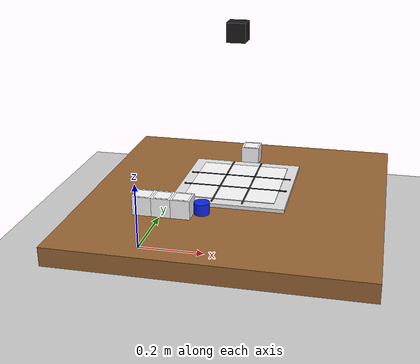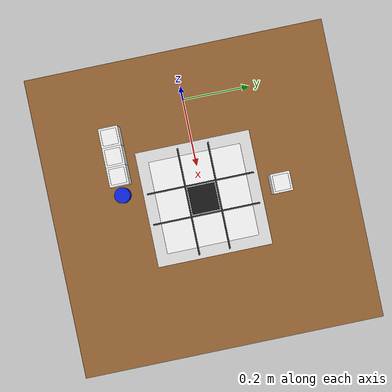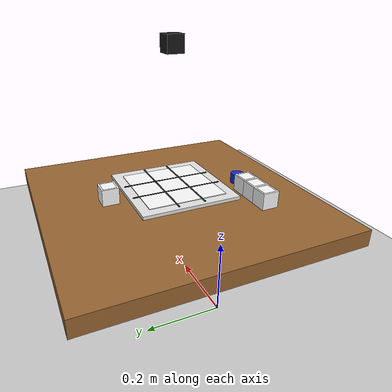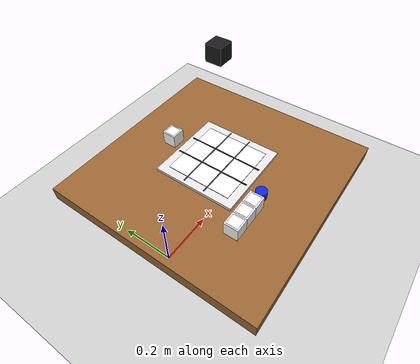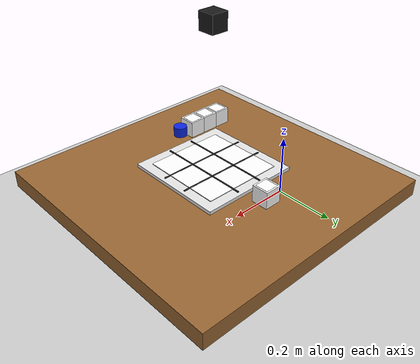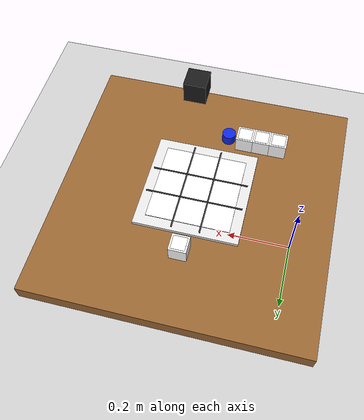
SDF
<sdf version="1.8">
 <world name="tictactoe_world">
  <physics name="1ms" type="ignored">
   <max_step_size>0.005</max_step_size>
   <real_time_factor>1</real_time_factor>
   <real_time_update_rate>500</real_time_update_rate>
  </physics>
  <plugin name="gz::sim::systems::Physics" filename="gz-sim-physics-system"/>
  <plugin name="gz::sim::systems::UserCommands" filename="gz-sim-user-commands-system"/>
  <plugin name="gz::sim::systems::SceneBroadcaster" filename="gz-sim-scene-broadcaster-system"/>
  <plugin name="gz::sim::systems::Contact" filename="gz-sim-contact-system"/>
  <plugin name="gz::sim::systems::Sensors" filename="gz-sim-sensors-system">
   <render_engine>ogre2</render_engine>
  </plugin>
  <light name="sun" type="directional">
   <pose>0 0 10 0 0 0</pose>
   <diffuse>0.8 0.8 0.8 1</diffuse>
   <specular>0.2 0.2 0.2 1</specular>
   <direction>-0.5 0.1 -0.9</direction>
  </light>
  <model name="ground_plane">
   <static>true</static>
   <link name="link">
    <collision name="collision">
     <geometry><plane><normal>0 0 1</normal><size>100 100</size></plane></geometry>
    </collision>
    <visual name="visual">
     <geometry><plane><normal>0 0 1</normal><size>100 100</size></plane></geometry>
     <material>
      <ambient>0.8 0.8 0.8 1</ambient>
      <diffuse>0.8 0.8 0.8 1</diffuse>
      <specular>0.8 0.8 0.8 1</specular>
     </material>
    </visual>
   </link>
  </model>
  <model name="tictactoe_table">
   <static>true</static>
   <pose>0.3 0.0 0.175 0 0 0</pose>
   <link name="link">
    <collision name="collision"><geometry><box><size>0.8 0.8 0.05</size></box></geometry></collision>
    <visual name="visual">
     <geometry><box><size>0.8 0.8 0.05</size></box></geometry>
     <material><ambient>0.6 0.4 0.2 1</ambient><diffuse>0.6 0.4 0.2 1</diffuse></material>
    </visual>
   </link>
  </model>
  <model name="table_stand">
   <static>true</static>
   <pose>0.3 0.0 0.075 0 0 0</pose>
   <link name="link">
    <collision name="collision"><geometry><box><size>0.3 0.3 0.15</size></box></geometry></collision>
    <visual name="visual">
     <geometry><box><size>0.3 0.3 0.15</size></box></geometry>
     <material><ambient>0.3 0.3 0.3 1</ambient><diffuse>0.3 0.3 0.3 1</diffuse></material>
    </visual>
   </link>
  </model>
  <model name="tictactoe_board">
   <static>true</static>
   <pose>0.3 0.0 0.23 0 0 0</pose>
   <link name="base_link">
    <collision name="collision"><geometry><box><size>0.3 0.3 0.01</size></box></geometry></collision>
    <visual name="visual">
     <geometry><box><size>0.3 0.3 0.01</size></box></geometry>
     <material><ambient>0.9 0.9 0.9 1</ambient><diffuse>0.9 0.9 0.9 1</diffuse></material>
    </visual>
   </link>
   <link name="cell_0_0">
    <pose>-0.08 0.08 0.006 0 0 0</pose>
    <visual name="visual">
     <geometry><box><size>0.08 0.08 0.002</size></box></geometry>
     <material><ambient>1 1 1 1</ambient><diffuse>1 1 1 1</diffuse></material>
    </visual>
   </link>
   <link name="cell_0_1">
    <pose>0 0.08 0.006 0 0 0</pose>
    <visual name="visual">
     <geometry><box><size>0.08 0.08 0.002</size></box></geometry>
     <material><ambient>1 1 1 1</ambient><diffuse>1 1 1 1</diffuse></material>
    </visual>
   </link>
   <link name="cell_0_2">
    <pose>0.08 0.08 0.006 0 0 0</pose>
    <visual name="visual">
     <geometry><box><size>0.08 0.08 0.002</size></box></geometry>
     <material><ambient>1 1 1 1</ambient><diffuse>1 1 1 1</diffuse></material>
    </visual>
   </link>
   <link name="cell_1_0">
    <pose>-0.08 0 0.006 0 0 0</pose>
    <visual name="visual">
     <geometry><box><size>0.08 0.08 0.002</size></box></geometry>
     <material><ambient>1 1 1 1</ambient><diffuse>1 1 1 1</diffuse></material>
    </visual>
   </link>
   <link name="cell_1_1">
    <pose>0 0 0.006 0 0 0</pose>
    <visual name="visual">
     <geometry><box><size>0.08 0.08 0.002</size></box></geometry>
     <material><ambient>1 1 1 1</ambient><diffuse>1 1 1 1</diffuse></material>
    </visual>
   </link>
   <link name="cell_1_2">
    <pose>0.08 0 0.006 0 0 0</pose>
    <visual name="visual">
     <geometry><box><size>0.08 0.08 0.002</size></box></geometry>
     <material><ambient>1 1 1 1</ambient><diffuse>1 1 1 1</diffuse></material>
    </visual>
   </link>
   <link name="cell_2_0">
    <pose>-0.08 -0.08 0.006 0 0 0</pose>
    <visual name="visual">
     <geometry><box><size>0.08 0.08 0.002</size></box></geometry>
     <material><ambient>1 1 1 1</ambient><diffuse>1 1 1 1</diffuse></material>
    </visual>
   </link>
   <link name="cell_2_1">
    <pose>0 -0.08 0.006 0 0 0</pose>
    <visual name="visual">
     <geometry><box><size>0.08 0.08 0.002</size></box></geometry>
     <material><ambient>1 1 1 1</ambient><diffuse>1 1 1 1</diffuse></material>
    </visual>
   </link>
   <link name="cell_2_2">
    <pose>0.08 -0.08 0.006 0 0 0</pose>
    <visual name="visual">
     <geometry><box><size>0.08 0.08 0.002</size></box></geometry>
     <material><ambient>1 1 1 1</ambient><diffuse>1 1 1 1</diffuse></material>
    </visual>
   </link>
   <link name="v_line_1">
    <pose>-0.04 0 0.007 0 0 0</pose>
    <visual name="visual">
     <geometry><box><size>0.004 0.28 0.002</size></box></geometry>
     <material><ambient>0.2 0.2 0.2 1</ambient><diffuse>0.2 0.2 0.2 1</diffuse></material>
    </visual>
   </link>
   <link name="v_line_2">
    <pose>0.04 0 0.007 0 0 0</pose>
    <visual name="visual">
     <geometry><box><size>0.004 0.28 0.002</size></box></geometry>
     <material><ambient>0.2 0.2 0.2 1</ambient><diffuse>0.2 0.2 0.2 1</diffuse></material>
    </visual>
   </link>
   <link name="h_line_1">
    <pose>0 -0.04 0.007 0 0 0</pose>
    <visual name="visual">
     <geometry><box><size>0.28 0.004 0.002</size></box></geometry>
     <material><ambient>0.2 0.2 0.2 1</ambient><diffuse>0.2 0.2 0.2 1</diffuse></material>
    </visual>
   </link>
   <link name="h_line_2">
    <pose>0 0.04 0.007 0 0 0</pose>
    <visual name="visual">
     <geometry><box><size>0.28 0.004 0.002</size></box></geometry>
     <material><ambient>0.2 0.2 0.2 1</ambient><diffuse>0.2 0.2 0.2 1</diffuse></material>
    </visual>
   </link>
  </model>
  <include><uri>model://aruco_cube_6</uri><name>robot_cube_6</name><pose>0.10 -0.2 0.245 0 0 0</pose></include>
  <include><uri>model://aruco_cube_7</uri><name>robot_cube_7</name><pose>0.15 -0.2 0.245 0 0 0</pose></include>
  <include><uri>model://aruco_cube_8</uri><name>robot_cube_8</name><pose>0.20 -0.2 0.245 0 0 0</pose></include>
  <include><uri>model://aruco_cube_9</uri><name>robot_cube_9</name><pose>0.25 -0.2 0.245 0 0 0</pose></include>
  <include><uri>model://aruco_cube_15</uri><name>human_cube_15</name><pose>0.30 0.2 0.245 0 0 0</pose></include>
  <model name="overhead_camera">
   <static>true</static>
   <pose>0.3 0.0 0.65 0 1.5708 0</pose>
   <link name="link">
    <collision name="collision"><geometry><box><size>0.05 0.05 0.05</size></box></geometry></collision>
    <visual name="visual">
     <geometry><box><size>0.05 0.05 0.05</size></box></geometry>
     <material><ambient>0.1 0.1 0.1 1</ambient><diffuse>0.1 0.1 0.1 1</diffuse></material>
    </visual>
    <sensor name="camera" type="camera">
     <always_on>true</always_on>
     <update_rate>15</update_rate>
     <visualize>true</visualize>
     <topic>/camera/image_raw</topic>
     <camera>
      <horizontal_fov>1.05</horizontal_fov>
      <image><width>800</width><height>800</height><format>R8G8B8</format></image>
      <clip><near>0.05</near><far>5.0</far></clip>
     </camera>
    </sensor>
   </link>
  </model>
 </world>
</sdf>

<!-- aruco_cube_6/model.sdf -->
<sdf version='1.10'>
  <model name='aruco_cube_6'>
    <link name="cube_link">
        <collision name="cube_collision">
            <geometry>
                <box>
                <size>0.05 0.05 0.05</size>
                </box>
            </geometry>

            <surface>
                <friction>
                <ode>
                    <mu>15</mu>
                    <mu2>15</mu2>
                </ode>
                </friction>
            </surface>
        </collision>

        <inertial>
            <mass>0.05</mass>
            <inertia>
                <ixx>0.000018</ixx>
                <iyy>0.000018</iyy>
                <izz>0.000018</izz>
                <ixy>0</ixy>
                <ixz>0</ixz>
                <iyz>0</iyz>
            </inertia>
        </inertial>

        <visual name="cube_visual">
            <geometry>
                <box>
                <size>0.05 0.05 0.05</size>
                </box>
            </geometry>
            <material>
                <ambient>1 1 1 1</ambient>
                <diffuse>1 1 1 1</diffuse>
                <specular>0.1 0.1 0.1 1</specular>
            </material>
        </visual>

        <visual name="aruco_top_visual">
            <pose>0 0 0.0251 0 0 0</pose>
            <geometry>
                <box>
                    <size>0.04 0.04 0.0001</size>
                </box>
            </geometry>
            <material>
                <ambient>1 1 1 1</ambient>
                <diffuse>1 1 1 1</diffuse>
                <pbr>
                    <metal>
                        <albedo_map>
                            material/textures/aruco_6.png

                        </albedo_map>
                        <roughness>1.0</roughness>
                        <metalness>0.0</metalness>
                    </metal>
                </pbr>
            </material>
        </visual>

    </link>
  </model>
</sdf>

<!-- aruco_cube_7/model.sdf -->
<sdf version='1.10'>
  <model name='aruco_cube_7'>
    <link name="cube_link">
        <collision name="cube_collision">
            <geometry>
                <box>
                <size>0.05 0.05 0.05</size>
                </box>
            </geometry>

            <surface>
                <friction>
                <ode>
                    <mu>15</mu>
                    <mu2>15</mu2>
                </ode>
                </friction>
            </surface>
        </collision>

        <inertial>
            <mass>0.05</mass>
            <inertia>
                <ixx>0.000018</ixx>
                <iyy>0.000018</iyy>
                <izz>0.000018</izz>
                <ixy>0</ixy>
                <ixz>0</ixz>
                <iyz>0</iyz>
            </inertia>
        </inertial>

        <visual name="cube_visual">
            <geometry>
                <box>
                <size>0.05 0.05 0.05</size>
                </box>
            </geometry>
            <material>
                <ambient>1 1 1 1</ambient>
                <diffuse>1 1 1 1</diffuse>
                <specular>0.1 0.1 0.1 1</specular>
            </material>
        </visual>

        <visual name="aruco_top_visual">
            <pose>0 0 0.0251 0 0 0</pose>
            <geometry>
                <box>
                    <size>0.04 0.04 0.0001</size>
                </box>
            </geometry>
            <material>
                <ambient>1 1 1 1</ambient>
                <diffuse>1 1 1 1</diffuse>
                <pbr>
                    <metal>
                        <albedo_map>
                            material/textures/aruco_7.png

                        </albedo_map>
                        <roughness>1.0</roughness>
                        <metalness>0.0</metalness>
                    </metal>
                </pbr>
            </material>
        </visual>

    </link>
  </model>
</sdf>

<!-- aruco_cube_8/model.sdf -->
<sdf version='1.10'>
  <model name='aruco_cube_8'>
    <link name="cube_link">
        <collision name="cube_collision">
            <geometry>
                <box>
                <size>0.05 0.05 0.05</size>
                </box>
            </geometry>

            <surface>
                <friction>
                <ode>
                    <mu>15</mu>
                    <mu2>15</mu2>
                </ode>
                </friction>
            </surface>
        </collision>

        <inertial>
            <mass>0.05</mass>
            <inertia>
                <ixx>0.000018</ixx>
                <iyy>0.000018</iyy>
                <izz>0.000018</izz>
                <ixy>0</ixy>
                <ixz>0</ixz>
                <iyz>0</iyz>
            </inertia>
        </inertial>

        <visual name="cube_visual">
            <geometry>
                <box>
                <size>0.05 0.05 0.05</size>
                </box>
            </geometry>
            <material>
                <ambient>1 1 1 1</ambient>
                <diffuse>1 1 1 1</diffuse>
                <specular>0.1 0.1 0.1 1</specular>
            </material>
        </visual>

        <visual name="aruco_top_visual">
            <pose>0 0 0.0251 0 0 0</pose>
            <geometry>
                <box>
                    <size>0.04 0.04 0.0001</size>
                </box>
            </geometry>
            <material>
                <ambient>1 1 1 1</ambient>
                <diffuse>1 1 1 1</diffuse>
                <pbr>
                    <metal>
                        <albedo_map>
                            material/textures/aruco_8.png

                        </albedo_map>
                        <roughness>1.0</roughness>
                        <metalness>0.0</metalness>
                    </metal>
                </pbr>
            </material>
        </visual>

    </link>
  </model>
</sdf>

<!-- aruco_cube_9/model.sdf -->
<sdf version='1.10'>
  <model name='aruco_cube_9'>
    <link name="cube_link">
        <collision name="cube_collision">
            <geometry>
                <cylinder>
                    <radius>0.02</radius>
                    <length>0.03</length>
                </cylinder>
            </geometry>
            <surface>
                <friction>
                <ode>
                    <mu>15</mu>
                    <mu2>15</mu2>
                </ode>
                </friction>
            </surface>
        </collision>

        <inertial>
            <mass>0.02</mass>
            <inertia>
                <ixx>0.000002</ixx>
                <iyy>0.000002</iyy>
                <izz>0.000004</izz>
                <ixy>0</ixy>
                <ixz>0</ixz>
                <iyz>0</iyz>
            </inertia>
        </inertial>

        <visual name="cube_visual">
            <geometry>
                <cylinder>
                    <radius>0.02</radius>
                    <length>0.03</length>
                </cylinder>
            </geometry>
            <material>
                <ambient>0.05 0.15 0.9 1</ambient>
                <diffuse>0.05 0.15 0.9 1</diffuse>
                <specular>0.2 0.2 0.2 1</specular>
            </material>
        </visual>
    </link>
  </model>
</sdf>

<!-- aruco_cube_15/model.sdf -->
<sdf version='1.10'>
  <model name='aruco_cube_15'>
    <link name="cube_link">
        <collision name="cube_collision">
            <geometry>
                <box>
                <size>0.05 0.05 0.05</size>
                </box>
            </geometry>

            <surface>
                <friction>
                <ode>
                    <mu>15</mu>
                    <mu2>15</mu2>
                </ode>
                </friction>
            </surface>
        </collision>

        <inertial>
            <mass>0.05</mass>
            <inertia>
                <ixx>0.000018</ixx>
                <iyy>0.000018</iyy>
                <izz>0.000018</izz>
                <ixy>0</ixy>
                <ixz>0</ixz>
                <iyz>0</iyz>
            </inertia>
        </inertial>

        <visual name="cube_visual">
            <geometry>
                <box>
                <size>0.05 0.05 0.05</size>
                </box>
            </geometry>
            <material>
                <ambient>1 1 1 1</ambient>
                <diffuse>1 1 1 1</diffuse>
                <specular>0.1 0.1 0.1 1</specular>
            </material>
        </visual>

        <visual name="aruco_top_visual">
            <pose>0 0 0.0251 0 0 0</pose>
            <geometry>
                <box>
                    <size>0.04 0.04 0.0001</size>
                </box>
            </geometry>
            <material>
                <ambient>1 1 1 1</ambient>
                <diffuse>1 1 1 1</diffuse>
                <pbr>
                    <metal>
                        <albedo_map>
                            material/textures/aruco_15.png

                        </albedo_map>
                        <roughness>1.0</roughness>
                        <metalness>0.0</metalness>
                    </metal>
                </pbr>
            </material>
        </visual>

    </link>
  </model>
</sdf>
